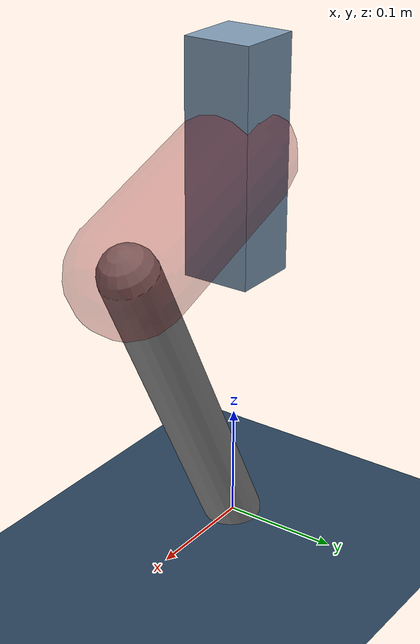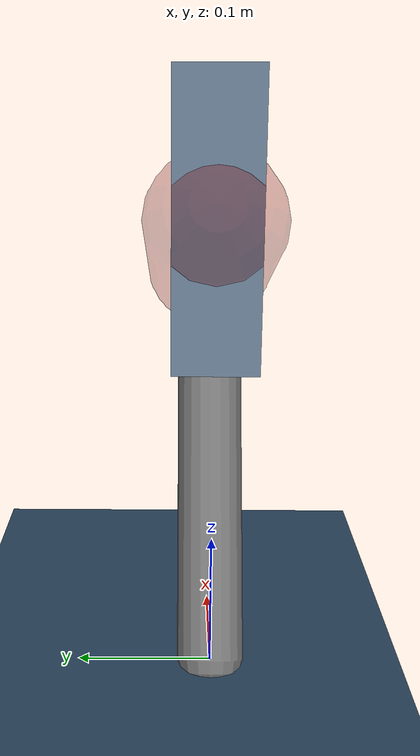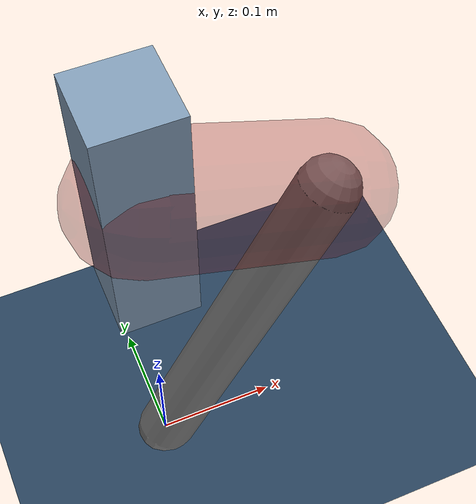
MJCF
<mujoco model="Hopper2D">
	<compiler inertiafromgeom="true" angle="radian" />
	<option timestep="0.001" integrator="implicit" cone="elliptic" solver="Newton" tolerance="1e-10" />

	<default>
		<geom contype="1" conaffinity="1" condim="3" friction="2 0.005 0.0001" solref="0.005 1" />
		<joint limited="true" damping="0.1" />
	</default>

	<asset>
		<texture name="skybox" type="skybox" builtin="gradient" rgb1=".4 .6 .8" rgb2="0 0 0" width="800" height="800" />
		<texture name="grid" type="2d" builtin="checker" rgb1=".1 .2 .3" rgb2=".2 .3 .4" width="300" height="300" mark="edge" markrgb=".2 .3 .4" />
		<material name="ground" texture="grid" texrepeat="1 1" texuniform="true" reflectance="0.1" />
		<material name="leg" rgba="0.5 0.6 0.7 1" />
	</asset>

	<worldbody>

		<geom name="floor" type="plane" size="5 5 0.25" material="ground" />

		<light directional="false" diffuse="0.8 0.8 0.8" specular="0.3 0.3 0.3" pos="0 0 2" dir="0 0 -1" />
		<light mode="targetbodycom" target="base" directional="false" diffuse="0.8 0.8 0.8" specular="0.3 0.3 0.3" pos="0 0 2" dir="0 0 -1" />

		<camera name="fixed" pos="0 -2 1" xyaxes="1 0 0 0 0 1" />
		<camera name="tracking" mode="trackcom" pos="0 -3 1" />

		<body name="root" pos="0 0 0.33301248831742947">
			<joint name="slide_x" type="slide" axis="1 0 0" range="-100 100" />
			<joint name="slide_z" type="slide" axis="0 0 1" range="0 10" />

			<body name="base" pos="0 0 0">
				<geom name="torso" type="box" size="0.03 0.03 0.1" mass="1.528" material="leg" />

				<body name="link1" pos="0 0 0" euler="0 0.36369779754069476 0">
					<joint type="hinge" axis="0 -1 0" pos="0 0 0" name="hinge1" limited="true" range="-3.14 3.14" stiffness="0" damping="0.1" />
					<geom name="thigh" type="capsule" fromto="0 0 0 0.15152446817082066 0 0" size="0.05" rgba="0.5 0 0 0.3" mass="0.6121062767928875" />

					<body name="link2" pos="0.15152446817082066 0 0" euler="0 1.6766268065508767 0">
						<joint type="hinge" axis="0 -1 0" pos="0 0 0" name="hinge2" limited="true" range="-3.14 3.14" stiffness="0" damping="0.1" />
						<geom name="shank" type="capsule" fromto="0 0 0 0.3129804748085765 0 0" size="0.025" mass="0.49398437984686117" />

					</body>
				</body>
			</body>
		</body>
	</worldbody>

	<actuator>
		<motor name="torque1" joint="hinge1" ctrlrange="-22.975255889800223 22.975255889800223" ctrllimited="true" gear="1" />
		<motor name="torque2" joint="hinge2" ctrlrange="-25.063022607889813 25.063022607889813" ctrllimited="true" gear="1" />
	</actuator>
</mujoco>
